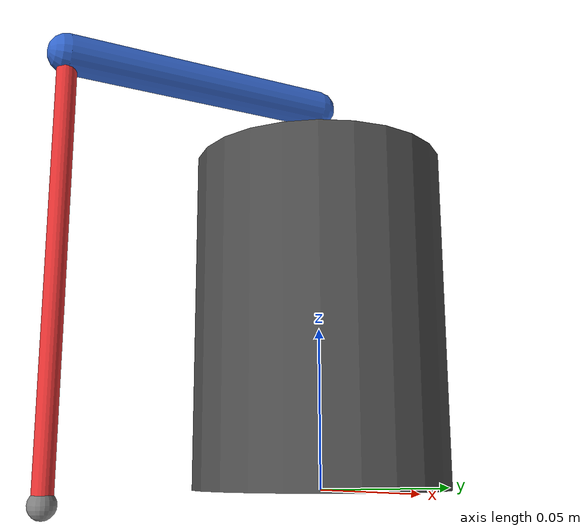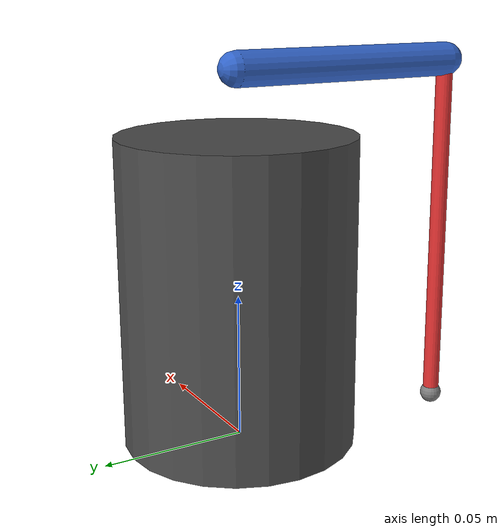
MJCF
<mujoco model="rotary_pendulum">
  <compiler angle="radian" inertiafromgeom="false"/>
  <option timestep="0.0033333333333333335" integrator="implicitfast" gravity="0 0 -9.81"/>
  <worldbody>
    <body name="base_link" pos="0 0 0">
      <geom type="cylinder" size="0.04 0.0525" pos="0 0 0.0525" rgba="0.3 0.3 0.3 1" contype="0" conaffinity="0"/>
      <body name="cart_link" pos="0 0 0.105">
        <!-- USD localRot0 rotates the default X revolute axis onto world -Z. -->
        <joint name="Revolute_1" type="hinge" axis="0 0 -1" limited="true" range="-2.3561944902 2.3561944902" damping="0"/>
        <inertial pos="0 -0.0425 0.020919" mass="0.095" diaginertia="5.719791667e-5 5.9918115e-6 5.719791667e-5"/>
        <geom type="capsule" fromto="0 0 0.020919 0 -0.085 0.020919" size="0.006" rgba="0.2 0.4 0.8 1" contype="0" conaffinity="0"/>
        <body name="pendulum" pos="0 -0.085 0.020919">
          <joint name="Revolute_2" type="hinge" axis="0 1 0" limited="false" damping="0.0005"/>
          <inertial pos="0.0005873690229 -0.04119438673 -0.04962789034" quat="0.9999824 0.00035093236 -0.005917526 0.0000025742947" mass="0.024" diaginertia="3.3282e-5 3.3282e-5 1.103649387e-6"/>
          <geom type="capsule" fromto="0 0 0 0 0 -0.129" size="0.003" rgba="0.9 0.2 0.2 1" contype="0" conaffinity="0"/>
          <site name="pendulum_tip" pos="0 0 -0.129" size="0.004"/>
        </body>
      </body>
    </body>
  </worldbody>
  <actuator>
    <velocity name="arm_velocity" joint="Revolute_1" kv="2" forcerange="-3 3" ctrllimited="false"/>
  </actuator>
</mujoco>
